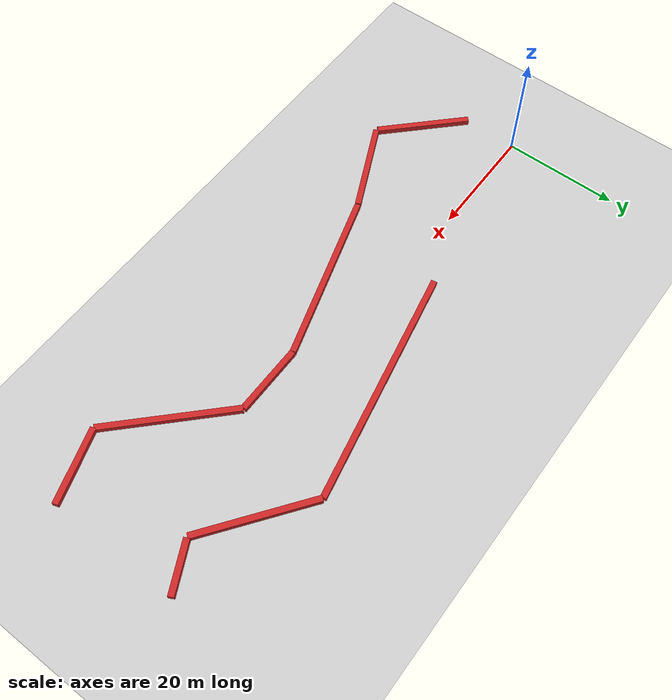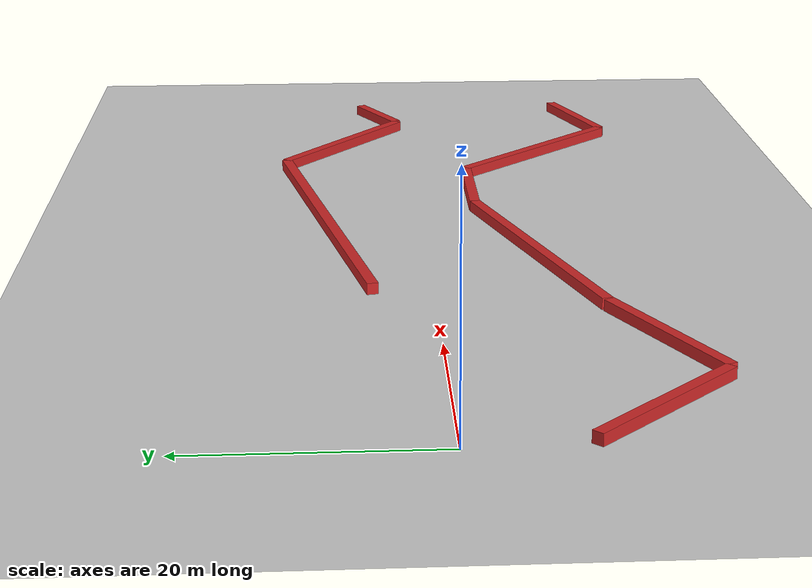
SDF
<?xml version="1.0" ?>
<?xml version="1.0" ?>
<sdf version="1.4">
  <world name="default">
    <include>
      <uri>model://ground_plane</uri>
    </include>

    <include>
      <uri>model://sun</uri>
    </include>

    <physics type="ode">
      <ode>
        <solver>
          <type>quick</type>
          <iters>50</iters>
        </solver>
      </ode>
      <real_time_update_rate>0.000000</real_time_update_rate>
    </physics>

    <model name='unit_box_0'>
      <pose frame=''>90 -19.2 0.5 0 0 0.3217505544</pose>
      <link name='link'>
        <collision name='box_collision'>
          <geometry>
            <box>
              <size>12.6 1 1</size>
            </box>
          </geometry>
          <max_contacts>10</max_contacts>
          <surface>
            <contact>
              <ode/>
            </contact>
            <bounce/>
            <friction>
              <torsional>
                <ode/>
              </torsional>
              <ode/>
            </friction>
          </surface>
        </collision>
        <visual name='visual'>
          <geometry>
            <box>
              <size>12.6 1 1</size>
            </box>
          </geometry>
          <material>
            <script>
              <name>Gazebo/Red</name>
              <uri>file://media/materials/scripts/gazebo.material</uri>
            </script>
          </material>
        </visual>
        <self_collide>
          0
        </self_collide>
        <kinematic>
          0
        </kinematic>
        <gravity>
          1
        </gravity>
        <sensor name="box_contact_sensor" type="contact">
          <always_on>true</always_on>
          <update_rate>5.0</update_rate>
          <contact>
            <collision>box_collision</collision>
          </contact>
          <plugin name="box_bumper" filename="libgazebo_ros_bumper.so">
            <bumperTopicName>box_collision</bumperTopicName>
            <frameName>Box</frameName>
          </plugin>
        </sensor>
      </link>
    </model>

    <model name='unit_box_1'>
      <pose frame=''>76 -13.2 0.5 0 0 -0.7853981634</pose>
      <link name='link'>
        <collision name='box_collision'>
          <geometry>
            <box>
              <size>22.6 1 1</size>
            </box>
          </geometry>
          <max_contacts>10</max_contacts>
          <surface>
            <contact>
              <ode/>
            </contact>
            <bounce/>
            <friction>
              <torsional>
                <ode/>
              </torsional>
              <ode/>
            </friction>
          </surface>
        </collision>
        <visual name='visual'>
          <geometry>
            <box>
              <size>22.6 1 1</size>
            </box>
          </geometry>
          <material>
            <script>
              <name>Gazebo/Red</name>
              <uri>file://media/materials/scripts/gazebo.material</uri>
            </script>
          </material>
        </visual>
        <self_collide>
          0
        </self_collide>
        <kinematic>
          0
        </kinematic>
        <gravity>
          1
        </gravity>
        <sensor name="box_contact_sensor" type="contact">
          <always_on>true</always_on>
          <update_rate>5.0</update_rate>
          <contact>
            <collision>box_collision</collision>
          </contact>
          <plugin name="box_bumper" filename="libgazebo_ros_bumper.so">
            <bumperTopicName>box_collision</bumperTopicName>
            <frameName>Box</frameName>
          </plugin>
        </sensor>
      </link>
    </model>

    <model name='unit_box_2'>
      <pose frame=''>62 -5.2 0.5 0 0 0</pose>
      <link name='link'>
        <collision name='box_collision'>
          <geometry>
            <box>
              <size>12 1 1</size>
            </box>
          </geometry>
          <max_contacts>10</max_contacts>
          <surface>
            <contact>
              <ode/>
            </contact>
            <bounce/>
            <friction>
              <torsional>
                <ode/>
              </torsional>
              <ode/>
            </friction>
          </surface>
        </collision>
        <visual name='visual'>
          <geometry>
            <box>
              <size>12 1 1</size>
            </box>
          </geometry>
          <material>
            <script>
              <name>Gazebo/Red</name>
              <uri>file://media/materials/scripts/gazebo.material</uri>
            </script>
          </material>
        </visual>
        <self_collide>
          0
        </self_collide>
        <kinematic>
          0
        </kinematic>
        <gravity>
          1
        </gravity>
        <sensor name="box_contact_sensor" type="contact">
          <always_on>true</always_on>
          <update_rate>5.0</update_rate>
          <contact>
            <collision>box_collision</collision>
          </contact>
          <plugin name="box_bumper" filename="libgazebo_ros_bumper.so">
            <bumperTopicName>box_collision</bumperTopicName>
            <frameName>Box</frameName>
          </plugin>
        </sensor>
      </link>
    </model>

    <model name='unit_box_3'>
      <pose frame=''>41.6 -9.6 0.5 0 0 0.2965458091</pose>
      <link name='link'>
        <collision name='box_collision'>
          <geometry>
            <box>
              <size>30 1 1</size>
            </box>
          </geometry>
          <max_contacts>10</max_contacts>
          <surface>
            <contact>
              <ode/>
            </contact>
            <bounce/>
            <friction>
              <torsional>
                <ode/>
              </torsional>
              <ode/>
            </friction>
          </surface>
        </collision>
        <visual name='visual'>
          <geometry>
            <box>
              <size>30 1 1</size>
            </box>
          </geometry>
          <material>
            <script>
              <name>Gazebo/Red</name>
              <uri>file://media/materials/scripts/gazebo.material</uri>
            </script>
          </material>
        </visual>
        <self_collide>
          0
        </self_collide>
        <kinematic>
          0
        </kinematic>
        <gravity>
          1
        </gravity>
        <sensor name="box_contact_sensor" type="contact">
          <always_on>true</always_on>
          <update_rate>5.0</update_rate>
          <contact>
            <collision>box_collision</collision>
          </contact>
          <plugin name="box_bumper" filename="libgazebo_ros_bumper.so">
            <bumperTopicName>box_collision</bumperTopicName>
            <frameName>Box</frameName>
          </plugin>
        </sensor>
      </link>
    </model>

    <model name='unit_box_4'>
      <pose frame=''>19.6 -17.6 0.5 0 0 0.442374223</pose>
      <link name='link'>
        <collision name='box_collision'>
          <geometry>
            <box>
              <size>16.5 1 1</size>
            </box>
          </geometry>
          <max_contacts>10</max_contacts>
          <surface>
            <contact>
              <ode/>
            </contact>
            <bounce/>
            <friction>
              <torsional>
                <ode/>
              </torsional>
              <ode/>
            </friction>
          </surface>
        </collision>
        <visual name='visual'>
          <geometry>
            <box>
              <size>16.5 1 1</size>
            </box>
          </geometry>
          <material>
            <script>
              <name>Gazebo/Red</name>
              <uri>file://media/materials/scripts/gazebo.material</uri>
            </script>
          </material>
        </visual>
        <self_collide>
          0
        </self_collide>
        <kinematic>
          0
        </kinematic>
        <gravity>
          1
        </gravity>
        <sensor name="box_contact_sensor" type="contact">
          <always_on>true</always_on>
          <update_rate>5.0</update_rate>
          <contact>
            <collision>box_collision</collision>
          </contact>
          <plugin name="box_bumper" filename="libgazebo_ros_bumper.so">
            <bumperTopicName>box_collision</bumperTopicName>
            <frameName>Box</frameName>
          </plugin>
        </sensor>
      </link>
    </model>

    <model name='unit_box_5'>
      <pose frame=''>6 -15.2 0.5 0 0 -0.7853981634</pose>
      <link name='link'>
        <collision name='box_collision'>
          <geometry>
            <box>
              <size>16.5 1 1</size>
            </box>
          </geometry>
          <max_contacts>10</max_contacts>
          <surface>
            <contact>
              <ode/>
            </contact>
            <bounce/>
            <friction>
              <torsional>
                <ode/>
              </torsional>
              <ode/>
            </friction>
          </surface>
        </collision>
        <visual name='visual'>
          <geometry>
            <box>
              <size>16.5 1 1</size>
            </box>
          </geometry>
          <material>
            <script>
              <name>Gazebo/Red</name>
              <uri>file://media/materials/scripts/gazebo.material</uri>
            </script>
          </material>
        </visual>
        <self_collide>
          0
        </self_collide>
        <kinematic>
          0
        </kinematic>
        <gravity>
          1
        </gravity>
        <sensor name="box_contact_sensor" type="contact">
          <always_on>true</always_on>
          <update_rate>5.0</update_rate>
          <contact>
            <collision>box_collision</collision>
          </contact>
          <plugin name="box_bumper" filename="libgazebo_ros_bumper.so">
            <bumperTopicName>box_collision</bumperTopicName>
            <frameName>Box</frameName>
          </plugin>
        </sensor>
      </link>
    </model>

    <model name='unit_box_6'>
      <pose frame=''>52 9.2 0.5 0 0 -2.9441970937</pose>
      <link name='link'>
        <collision name='box_collision'>
          <geometry>
            <box>
              <size>40.7 1 1</size>
            </box>
          </geometry>
          <max_contacts>10</max_contacts>
          <surface>
            <contact>
              <ode/>
            </contact>
            <bounce/>
            <friction>
              <torsional>
                <ode/>
              </torsional>
              <ode/>
            </friction>
          </surface>
        </collision>
        <visual name='visual'>
          <geometry>
            <box>
              <size>40.7 1 1</size>
            </box>
          </geometry>
          <material>
            <script>
              <name>Gazebo/Red</name>
              <uri>file://media/materials/scripts/gazebo.material</uri>
            </script>
          </material>
        </visual>
        <self_collide>
          0
        </self_collide>
        <kinematic>
          0
        </kinematic>
        <gravity>
          1
        </gravity>
        <sensor name="box_contact_sensor" type="contact">
          <always_on>true</always_on>
          <update_rate>5.0</update_rate>
          <contact>
            <collision>box_collision</collision>
          </contact>
          <plugin name="box_bumper" filename="libgazebo_ros_bumper.so">
            <bumperTopicName>box_collision</bumperTopicName>
            <frameName>Box</frameName>
          </plugin>
        </sensor>
      </link>
    </model>

    <model name='unit_box_7'>
      <pose frame=''>80 7.2 0.5 0 0 2.4980915448</pose>
      <link name='link'>
        <collision name='box_collision'>
          <geometry>
            <box>
              <size>20 1 1</size>
            </box>
          </geometry>
          <max_contacts>10</max_contacts>
          <surface>
            <contact>
              <ode/>
            </contact>
            <bounce/>
            <friction>
              <torsional>
                <ode/>
              </torsional>
              <ode/>
            </friction>
          </surface>
        </collision>
        <visual name='visual'>
          <geometry>
            <box>
              <size>20 1 1</size>
            </box>
          </geometry>
          <material>
            <script>
              <name>Gazebo/Red</name>
              <uri>file://media/materials/scripts/gazebo.material</uri>
            </script>
          </material>
        </visual>
        <self_collide>
          0
        </self_collide>
        <kinematic>
          0
        </kinematic>
        <gravity>
          1
        </gravity>
        <sensor name="box_contact_sensor" type="contact">
          <always_on>true</always_on>
          <update_rate>5.0</update_rate>
          <contact>
            <collision>box_collision</collision>
          </contact>
          <plugin name="box_bumper" filename="libgazebo_ros_bumper.so">
            <bumperTopicName>box_collision</bumperTopicName>
            <frameName>Box</frameName>
          </plugin>
        </sensor>
      </link>
    </model>

    <model name='unit_box_8'>
      <pose frame=''>92 3.2 0.5 0 0 -2.6779450446</pose>
      <link name='link'>
        <collision name='box_collision'>
          <geometry>
            <box>
              <size>8.5 1 1</size>
            </box>
          </geometry>
          <max_contacts>10</max_contacts>
          <surface>
            <contact>
              <ode/>
            </contact>
            <bounce/>
            <friction>
              <torsional>
                <ode/>
              </torsional>
              <ode/>
            </friction>
          </surface>
        </collision>
        <visual name='visual'>
          <geometry>
            <box>
              <size>8.5 1 1</size>
            </box>
          </geometry>
          <material>
            <script>
              <name>Gazebo/Red</name>
              <uri>file://media/materials/scripts/gazebo.material</uri>
            </script>
          </material>
        </visual>
        <self_collide>
          0
        </self_collide>
        <kinematic>
          0
        </kinematic>
        <gravity>
          1
        </gravity>
        <sensor name="box_contact_sensor" type="contact">
          <always_on>true</always_on>
          <update_rate>5.0</update_rate>
          <contact>
            <collision>box_collision</collision>
          </contact>
          <plugin name="box_bumper" filename="libgazebo_ros_bumper.so">
            <bumperTopicName>box_collision</bumperTopicName>
            <frameName>Box</frameName>
          </plugin>
        </sensor>
      </link>
    </model>

  </world>
</sdf>
